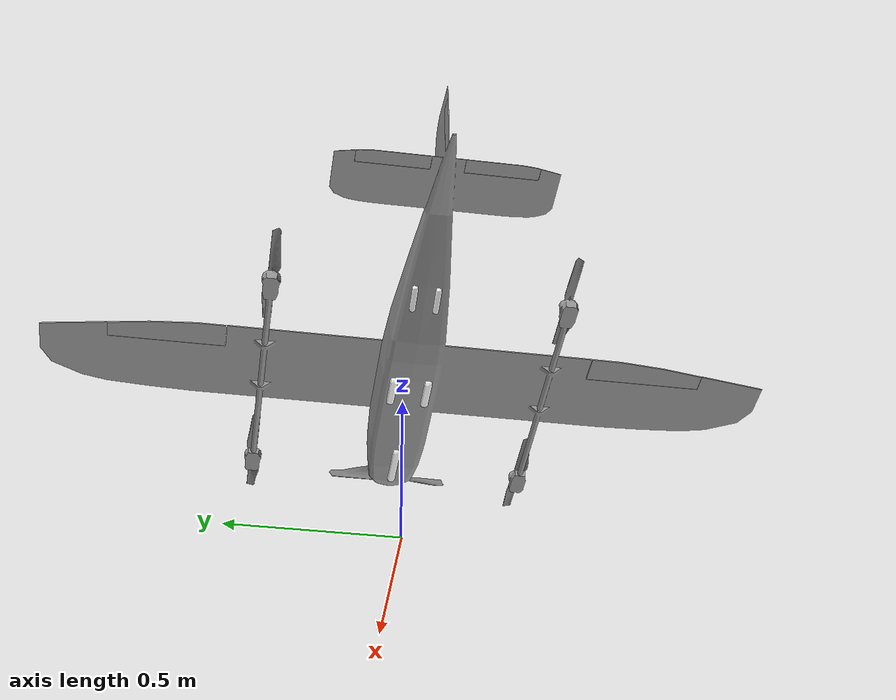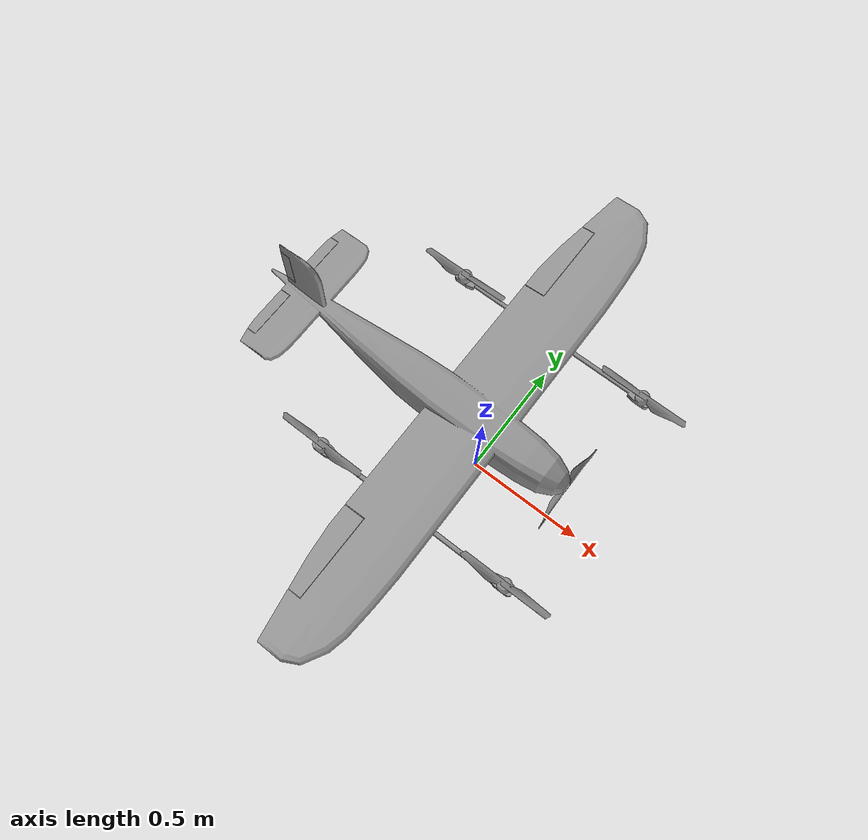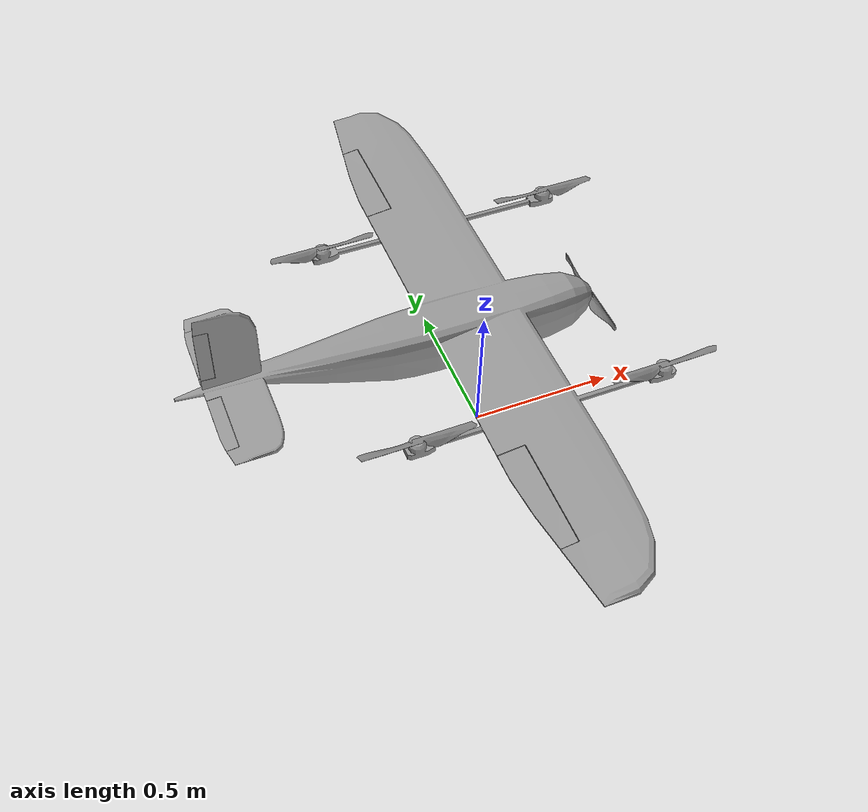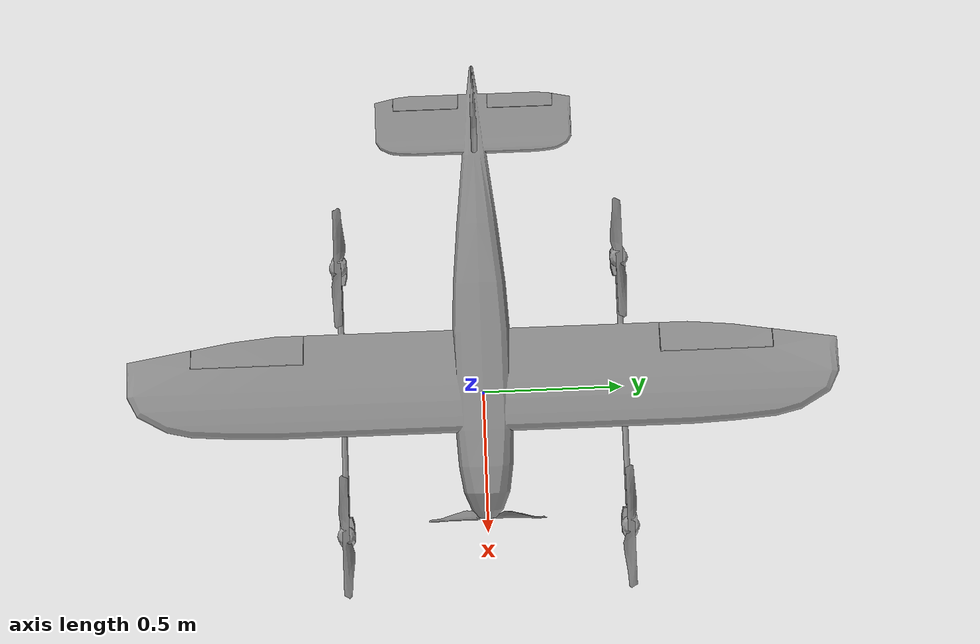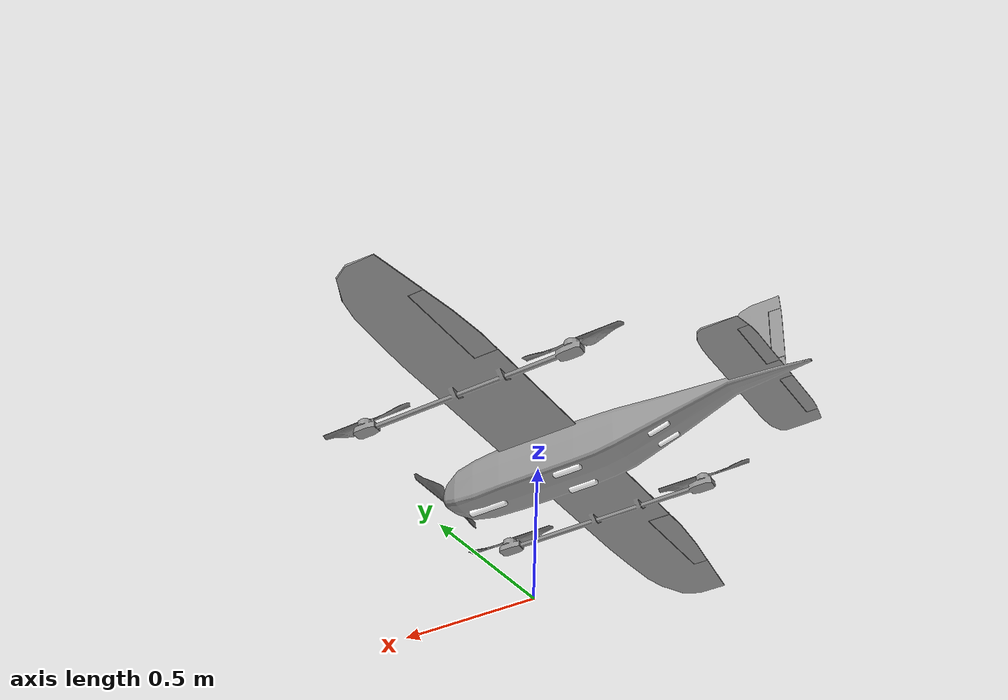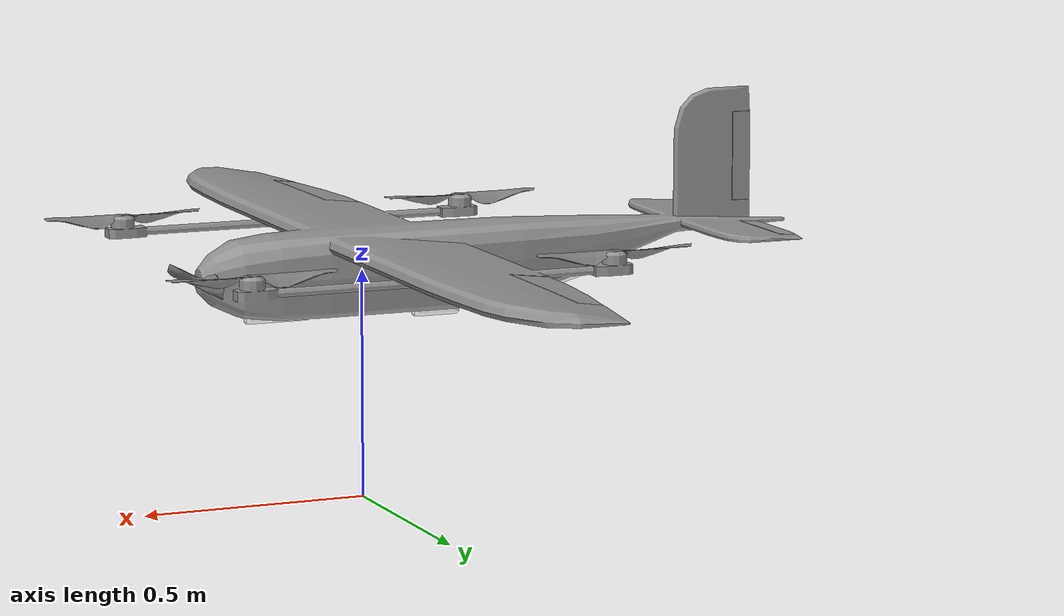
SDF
<?xml version="1.0"?>
<sdf version="1.10">
  <model name='foxtech_loong_2160'>
    <pose>0 0 0.5 0 0 0</pose>
    <link name="base_link">
      <visual name="visual_base_link">
        <geometry>
          <mesh>
            <uri>model://foxtech_loong_2160/meshes/VTOL.dae</uri>
          </mesh>
        </geometry>
      </visual>
      <collision name='base_link_collision'>
        <pose>0 0 -0.07 0 0 0</pose>
        <geometry>
          <box>
            <size>0.55 2.144 0.05</size>
          </box>
        </geometry>
        <surface>
          <contact>
            <ode>
              <kp>100000</kp>
              <kd>1.0</kd>
              <max_vel>0.1</max_vel>
              <min_depth>0.001</min_depth>
            </ode>
          </contact>
          <friction>
            <ode/>
          </friction>
        </surface>
      </collision>
      <inertial>
        <pose>-0.13220955077769075 -4.9142356489896525e-08 0.04102678265168308 1.5707963267948966 -1.5231416433972742 0</pose>
        <mass>3.584838964525901</mass>
        <inertia>
          <ixx>0.67738485351961117</ixx>
          <ixy>0</ixy>
          <ixz>0</ixz>
          <iyy>0.40350427325261343</iyy>
          <iyz>0</iyz>
          <izz>0.28925142846350795</izz>
        </inertia>
      </inertial>
      <sensor name="imu_sensor" type="imu">
        <always_on>1</always_on>
        <update_rate>250</update_rate>
      </sensor>
    </link>
    <link name="legs_link">
      <pose>0 0 0 0 0 -1.57</pose>
      <visual name="visual_legs_link">
        <geometry>
          <mesh>
            <uri>model://foxtech_loong_2160/meshes/legs.dae</uri>
          </mesh>
        </geometry>
        <material>
          <ambient>1 1 1 1.0</ambient>
          <diffuse>1 1 1 1.0</diffuse>
        </material>
      </visual>
      <inertial>
        <pose>3.7153930608820144e-06 -0.17032952180315669 -0.067888027893133446 0.010363008330798451 -1.494594844601834 1.5602561510969915</pose>
        <mass>0.6675493726413797</mass>
        <inertia>
          <ixx>0.032153703643267112</ixx>
          <ixy>0</ixy>
          <ixz>0</ixz>
          <iyy>0.031670484418576728</iyy>
          <iyz>0</iyz>
          <izz>0.00069030434527976208</izz>
        </inertia>
      </inertial>
    </link>
    <joint name='legs_joint' type='fixed'>
      <child>legs_link</child>
      <parent>base_link</parent>
    </joint>
    <link name="aileron_left_link">
      <pose>-0.122 0.713 0.062 0 0 -1.57</pose>
      <visual name="visual_aileron_left_link">
        <geometry>
          <mesh>
            <uri>model://foxtech_loong_2160/meshes/aileron_left.dae</uri>
          </mesh>
        </geometry>
      </visual>
      <inertial>
        <pose>0.016428520956860652 -0.026006344294799606 -0.0023574007803185606 -1.5395303459623877 -1.5044452951949348 -1.6400967799666224</pose>
        <mass>0.48889497715279695</mass>
        <inertia>
          <ixx>0.0046714785213929121</ixx>
          <ixy>0</ixy>
          <ixz>0</ixz>
          <iyy>0.0044549919806967505</iyy>
          <iyz>0</iyz>
          <izz>0.00022471747503113157</izz>
        </inertia>
      </inertial>
    </link>
    <joint name="servo_0" type="revolute">
      <parent>base_link</parent>
      <child>aileron_left_link</child>
      <axis>
        <xyz>-1 0 0</xyz>
        <limit>
          <lower>-0.53</lower>
          <upper>0.53</upper>
        </limit>
        <dynamics>
          <damping>1.000</damping>
        </dynamics>
      </axis>
    </joint>
    <link name="aileron_right_link">
      <pose>-0.122 -0.713 0.062 0 0 -1.57</pose>
      <visual name="visual_aileron_right_link">
        <geometry>
          <mesh>
            <uri>model://foxtech_loong_2160/meshes/aileron_right.dae</uri>
          </mesh>
        </geometry>
      </visual>
      <inertial>
        <pose>-0.016428520373255796 -0.026006344259039589 -0.0023573984798765397 -1.6020624043352432 -1.5044453783967096 -1.5014957739781367</pose>
        <mass>0.48889496879062661</mass>
        <inertia>
          <ixx>0.0046714784977765411</ixx>
          <ixy>0</ixy>
          <ixz>0</ixz>
          <iyy>0.0044549919610427299</iyy>
          <iyz>0</iyz>
          <izz>0.00022471747055809963</izz>
        </inertia>
      </inertial>
    </link>
    <joint name="servo_1" type="revolute">
      <parent>base_link</parent>
      <child>aileron_right_link</child>
      <axis>
        <xyz>-1 0 0</xyz>
        <limit>
          <lower>-0.53</lower>
          <upper>0.53</upper>
        </limit>
        <dynamics>
          <damping>1.000</damping>
        </dynamics>
      </axis>
    </joint>
    <link name="elevator_link">
      <visual name="visual_elevator_right_link">
        <pose>-0.883 -0.145 0.058 0 0 -1.57</pose>
        <geometry>
          <mesh>
            <uri>model://foxtech_loong_2160/meshes/elevator_right.dae</uri>
          </mesh>
        </geometry>
      </visual>
      <visual name="visual_elevator_left_link">
        <pose>-0.883 0.145 0.058 0 0 -1.57</pose>
        <geometry>
          <mesh>
            <uri>model://foxtech_loong_2160/meshes/elevator_left.dae</uri>
          </mesh>
        </geometry>
      </visual>
      <inertial>
        <pose>-0.90103043712540809 -1.4356019912623529e-05 0.057304774890379953 -1.5708004219891478 -1.5333831628670098 -3.141493135229823</pose>
        <mass>0.12150608610187363</mass>
        <inertia>
          <ixx>0.0029053735939891879</ixx>
          <ixy>0</ixy>
          <ixz>0</ixz>
          <iyy>0.0028879706692375028</iyy>
          <iyz>0</iyz>
          <izz>1.7683703559870421e-05</izz>
        </inertia>
      </inertial>
    </link>
    <joint name="servo_2" type="revolute">
      <pose>-0.883 0 0.058 0 0 -1.57</pose>
      <parent>base_link</parent>
      <child>elevator_link</child>
      <axis>
        <xyz>-1 0 0</xyz>
        <limit>
          <lower>-0.53</lower>
          <upper>0.53</upper>
        </limit>
        <dynamics>
          <damping>1.000</damping>
        </dynamics>
      </axis>
    </joint>
    <link name="rudder_link">
      <pose>-0.887 0 0.201 0 0 -1.57</pose>
      <visual name="visual_rudder_link">
        <geometry>
          <mesh>
            <uri>model://foxtech_loong_2160/meshes/rudder.dae</uri>
          </mesh>
        </geometry>
      </visual>
      <inertial>p
        <pose>3.0720176589210631e-09 -0.014597633583934367 -0.00023793299837082617 -0.00096325055376496349 0 0</pose>
        <mass>0.08686124232617691</mass>
        <inertia>
          <ixx>0.00029239473616759126</ixx>
          <ixy>0</ixy>
          <ixz>0</ixz>
          <iyy>0.00028035840542611708</iyy>
          <iyz>0</iyz>
          <izz>1.2453403617197103e-05</izz>
        </inertia>
      </inertial>
    </link>
    <joint name="servo_3" type="revolute">
      <parent>base_link</parent>
      <child>rudder_link</child>
      <axis>
        <xyz>0 0 1</xyz>
        <limit>
          <lower>-0.53</lower>
          <upper>0.53</upper>
        </limit>
        <dynamics>
          <damping>1.000</damping>
        </dynamics>
      </axis>
    </joint>
    <link name="rotor_3">
      <gravity>true</gravity>
      <self_collide>false</self_collide>
      <velocity_decay/>
      <pose>-0.403 -0.427 0.083 0 0 -1.57</pose>
      <inertial>
          <mass>0.016076923076923075</mass>
          <inertia>
            <ixx>3.8464910483993325e-07</ixx>
            <iyy>2.6115851691700804e-05</iyy>
            <izz>2.649858234714004e-05</izz>
          </inertia>
        </inertial>
      <visual name="rotor_3_visual">
        <geometry>
          <mesh>
            <uri>model://foxtech_loong_2160/meshes/propeller_ccw.dae</uri>
          </mesh>
        </geometry>
      </visual>
      <collision name="rotor_3_collision">
        <geometry>
          <box>
            <size>0.2792307692307692 0.016923076923076923 0.0008461538461538462</size>
          </box>
        </geometry>
        <surface>
          <contact>
            <ode>
              <min_depth>0.001</min_depth>
              <max_vel>0</max_vel>
            </ode>
          </contact>
          <friction>
            <ode/>
          </friction>
        </surface>
      </collision>
    </link>
    <joint name="rotor_0_joint" type="revolute">
      <parent>base_link</parent>
      <child>rotor_0</child>
      <axis>
        <xyz>0 0 1</xyz>
        <limit>
          <lower>-1e+16</lower>
          <upper>1e+16</upper>
        </limit>
        <dynamics>
          <spring_reference>0</spring_reference>
          <spring_stiffness>0</spring_stiffness>
        </dynamics>
      </axis>
    </joint>
    <link name="rotor_2">
      <gravity>true</gravity>
      <self_collide>false</self_collide>
      <velocity_decay/>
      <pose>0.403 0.427 0.083 0 0 -1.57</pose>
      <inertial>
          <mass>0.016076923076923075</mass>
          <inertia>
            <ixx>3.8464910483993325e-07</ixx>
            <iyy>2.6115851691700804e-05</iyy>
            <izz>2.649858234714004e-05</izz>
          </inertia>
        </inertial>
      <visual name="rotor_2_visual">
        <geometry>
          <mesh>
            <uri>model://foxtech_loong_2160/meshes/propeller_ccw.dae</uri>
          </mesh>
        </geometry>
      </visual>
      <collision name="rotor_2_collision">
        <geometry>
          <box>
            <size>0.2792307692307692 0.016923076923076923 0.0008461538461538462</size>
          </box>
        </geometry>
        <surface>
          <contact>
            <ode>
              <min_depth>0.001</min_depth>
              <max_vel>0</max_vel>
            </ode>
          </contact>
          <friction>
            <ode/>
          </friction>
        </surface>
      </collision>
    </link>
    <joint name="rotor_1_joint" type="revolute">
      <parent>base_link</parent>
      <child>rotor_1</child>
      <axis>
        <xyz>0 0 1</xyz>
        <limit>
          <lower>-1e+16</lower>
          <upper>1e+16</upper>
        </limit>
        <dynamics>
          <spring_reference>0</spring_reference>
          <spring_stiffness>0</spring_stiffness>
        </dynamics>
      </axis>
    </joint>
    <link name="rotor_0">
      <gravity>true</gravity>
      <self_collide>false</self_collide>
      <velocity_decay/>
      <pose>0.403 -0.427 0.083 0 0 -1.57</pose>
      <inertial>
          <mass>0.016076923076923075</mass>
          <inertia>
            <ixx>3.8464910483993325e-07</ixx>
            <iyy>2.6115851691700804e-05</iyy>
            <izz>2.649858234714004e-05</izz>
          </inertia>
        </inertial>
      <visual name="rotor_0_visual">
        <geometry>
          <mesh>
            <uri>model://foxtech_loong_2160/meshes/propeller_cw.dae</uri>
          </mesh>
        </geometry>
      </visual>
      <collision name="rotor_0_collision">
        <geometry>
          <box>
            <size>0.2792307692307692 0.016923076923076923 0.0008461538461538462</size>
          </box>
        </geometry>
        <surface>
          <contact>
            <ode>
              <min_depth>0.001</min_depth>
              <max_vel>0</max_vel>
            </ode>
          </contact>
          <friction>
            <ode/>
          </friction>
        </surface>
      </collision>
    </link>
    <joint name="rotor_2_joint" type="revolute">
      <parent>base_link</parent>
      <child>rotor_2</child>
      <axis>
        <xyz>0 0 1</xyz>
        <limit>
          <lower>-1e+16</lower>
          <upper>1e+16</upper>
        </limit>
        <dynamics>
          <spring_reference>0</spring_reference>
          <spring_stiffness>0</spring_stiffness>
        </dynamics>
      </axis>
    </joint>
    <link name="rotor_1">
      <gravity>true</gravity>
      <self_collide>false</self_collide>
      <velocity_decay/>
      <pose>-0.403 0.427 0.083 0 0 -1.57</pose>
      <inertial>
          <mass>0.016076923076923075</mass>
          <inertia>
            <ixx>3.8464910483993325e-07</ixx>
            <iyy>2.6115851691700804e-05</iyy>
            <izz>2.649858234714004e-05</izz>
          </inertia>
        </inertial>
      <visual name="rotor_1_visual">
        <geometry>
          <mesh>
            <uri>model://foxtech_loong_2160/meshes/propeller_cw.dae</uri>
          </mesh>
        </geometry>
      </visual>
      <collision name="rotor_1_collision">
        <geometry>
          <box>
            <size>0.2792307692307692 0.016923076923076923 0.0008461538461538462</size>
          </box>
        </geometry>
        <surface>
          <contact>
            <ode>
              <min_depth>0.001</min_depth>
              <max_vel>0</max_vel>
            </ode>
          </contact>
          <friction>
            <ode/>
          </friction>
        </surface>
      </collision>
    </link>
    <joint name="rotor_3_joint" type="revolute">
      <parent>base_link</parent>
      <child>rotor_3</child>
      <axis>
        <xyz>0 0 1</xyz>
        <limit>
          <lower>-1e+16</lower>
          <upper>1e+16</upper>
        </limit>
        <dynamics>
          <spring_reference>0</spring_reference>
          <spring_stiffness>0</spring_stiffness>
        </dynamics>
      </axis>
    </joint>
    <link name='rotor_puller'>
      <pose>0.379 0.0 0.0 -1.57 1.57 -1.57</pose>
      <inertial>
        <pose>0 0 0 0 0 0</pose>
        <mass>0.005</mass>
        <inertia>
          <ixx>9.75e-07</ixx>
          <ixy>0</ixy>
          <ixz>0</ixz>
          <iyy>0.000166704</iyy>
          <iyz>0</iyz>
          <izz>0.000167604</izz>
        </inertia>
      </inertial>
      <collision name='rotor_puller_collision'>
        <geometry>
          <cylinder>
            <length>0.005</length>
            <radius>0.06</radius>
          </cylinder>
        </geometry>
        <surface>
          <contact>
            <ode/>
          </contact>
          <friction>
            <ode/>
          </friction>
        </surface>
      </collision>
      <visual name='rotor_puller_visual'>
        <geometry>
          <mesh>
            <uri>model://foxtech_loong_2160/meshes/propeller_cw.dae</uri>
          </mesh>
        </geometry>
      </visual>
      <gravity>1</gravity>
      <velocity_decay/>
      <self_collide>0</self_collide>
    </link>
    <joint name='rotor_puller_joint' type='revolute'>
      <pose>0.0 0 0.0 0 -1.57 0</pose>
      <child>rotor_puller</child>
      <parent>base_link</parent>
      <axis>
        <xyz>1 0 0</xyz>
        <limit>
          <lower>-1e+16</lower>
          <upper>1e+16</upper>
        </limit>
        <dynamics>
          <spring_reference>0</spring_reference>
          <spring_stiffness>0</spring_stiffness>
        </dynamics>
      </axis>
    </joint>

    <plugin filename="gz-sim-multicopter-motor-model-system" name="gz::sim::systems::MulticopterMotorModel">
      <jointName>rotor_0_joint</jointName>
      <linkName>rotor_0</linkName>
      <turningDirection>ccw</turningDirection>
      <timeConstantUp>0.0125</timeConstantUp>
      <timeConstantDown>0.025</timeConstantDown>
      <maxRotVelocity>1500</maxRotVelocity>
      <motorConstant>2e-05</motorConstant>
      <momentConstant>0.06</momentConstant>
      <commandSubTopic>command/motor_speed</commandSubTopic>
      <motorNumber>0</motorNumber>
      <rotorDragCoefficient>0.000106428</rotorDragCoefficient>
      <rollingMomentCoefficient>1e-06</rollingMomentCoefficient>
      <rotorVelocitySlowdownSim>20</rotorVelocitySlowdownSim>
      <motorType>velocity</motorType>
    </plugin>
    <plugin filename="gz-sim-multicopter-motor-model-system" name="gz::sim::systems::MulticopterMotorModel">
      <jointName>rotor_1_joint</jointName>
      <linkName>rotor_1</linkName>
      <turningDirection>ccw</turningDirection>
      <timeConstantUp>0.0125</timeConstantUp>
      <timeConstantDown>0.025</timeConstantDown>
      <maxRotVelocity>1500</maxRotVelocity>
      <motorConstant>2e-05</motorConstant>
      <momentConstant>0.06</momentConstant>
      <commandSubTopic>command/motor_speed</commandSubTopic>
      <motorNumber>1</motorNumber>
      <rotorDragCoefficient>0.000106428</rotorDragCoefficient>
      <rollingMomentCoefficient>1e-06</rollingMomentCoefficient>
      <rotorVelocitySlowdownSim>20</rotorVelocitySlowdownSim>
      <motorType>velocity</motorType>
    </plugin>
    <plugin
      filename="gz-sim-multicopter-motor-model-system"
      name="gz::sim::systems::MulticopterMotorModel">
      <jointName>rotor_2_joint</jointName>
      <linkName>rotor_2</linkName>
      <turningDirection>cw</turningDirection>
      <timeConstantUp>0.0125</timeConstantUp>
      <timeConstantDown>0.025</timeConstantDown>
      <maxRotVelocity>1500</maxRotVelocity>
      <motorConstant>2e-05</motorConstant>
      <momentConstant>0.06</momentConstant>
      <commandSubTopic>command/motor_speed</commandSubTopic>
      <motorNumber>2</motorNumber>
      <rotorDragCoefficient>0.000106428</rotorDragCoefficient>
      <rollingMomentCoefficient>1e-06</rollingMomentCoefficient>
      <rotorVelocitySlowdownSim>20</rotorVelocitySlowdownSim>
      <motorType>velocity</motorType>
    </plugin>
    <plugin
      filename="gz-sim-multicopter-motor-model-system"
      name="gz::sim::systems::MulticopterMotorModel">
      <jointName>rotor_3_joint</jointName>
      <linkName>rotor_3</linkName>
      <turningDirection>cw</turningDirection>
      <timeConstantUp>0.0125</timeConstantUp>
      <timeConstantDown>0.025</timeConstantDown>
      <maxRotVelocity>1500</maxRotVelocity>
      <motorConstant>2e-05</motorConstant>
      <momentConstant>0.06</momentConstant>
      <commandSubTopic>command/motor_speed</commandSubTopic>
      <motorNumber>3</motorNumber>
      <rotorDragCoefficient>0.000106428</rotorDragCoefficient>
      <rollingMomentCoefficient>1e-06</rollingMomentCoefficient>
      <rotorVelocitySlowdownSim>20</rotorVelocitySlowdownSim>
      <motorType>velocity</motorType>
    </plugin>
    <plugin
      filename="gz-sim-multicopter-motor-model-system"
      name="gz::sim::systems::MulticopterMotorModel">
      <jointName>rotor_puller_joint</jointName>
      <linkName>rotor_puller</linkName>
      <turningDirection>cw</turningDirection>
      <timeConstantUp>0.0125</timeConstantUp>
      <timeConstantDown>0.025</timeConstantDown>
      <maxRotVelocity>3500</maxRotVelocity>
      <motorConstant>8.54858e-06</motorConstant>
      <momentConstant>0.01</momentConstant>
      <commandSubTopic>command/motor_speed</commandSubTopic>
      <motorNumber>4</motorNumber>
      <rotorDragCoefficient>0.000106428</rotorDragCoefficient>
      <rollingMomentCoefficient>1e-06</rollingMomentCoefficient>
      <rotorVelocitySlowdownSim>20</rotorVelocitySlowdownSim>
      <motorType>velocity</motorType>
    </plugin>
    <plugin filename="gz-sim-lift-drag-system" name="gz::sim::systems::LiftDrag">
      <a0>0.05984281113</a0>
      <cla>4.752798721</cla>
      <cda>0.6417112299</cda>
      <cma>0.0</cma>
      <alpha_stall>0.3391428111</alpha_stall>
      <cla_stall>-3.85</cla_stall>
      <cda_stall>-0.9233984055</cda_stall>
      <cma_stall>0</cma_stall>
      <cp>-0.05 0.45 0.05</cp>
      <area>0.6</area>
      <air_density>1.2041</air_density>
      <forward>1 0 0</forward>
      <upward>0 0 1</upward>
      <link_name>base_link</link_name>
      <control_joint_name>servo_0</control_joint_name>
      <control_joint_rad_to_cl>-0.3</control_joint_rad_to_cl>
    </plugin>
    <plugin
      filename="gz-sim-joint-position-controller-system" name="gz::sim::systems::JointPositionController">
      <joint_name>servo_0</joint_name>
      <sub_topic>servo_0</sub_topic>
      <p_gain>10.0</p_gain>
    </plugin>
    <plugin filename="gz-sim-lift-drag-system" name="gz::sim::systems::LiftDrag">
      <a0>0.05984281113</a0>
      <cla>4.752798721</cla>
      <cda>0.6417112299</cda>
      <cma>0.0</cma>
      <alpha_stall>0.3391428111</alpha_stall>
      <cla_stall>-3.85</cla_stall>
      <cda_stall>-0.9233984055</cda_stall>
      <cma_stall>0</cma_stall>
      <cp>-0.05 -0.45 0.05</cp>
      <area>0.6</area>
      <air_density>1.2041</air_density>
      <forward>1 0 0</forward>
      <upward>0 0 1</upward>
      <link_name>base_link</link_name>
      <control_joint_name>servo_1</control_joint_name>
      <control_joint_rad_to_cl>-0.3</control_joint_rad_to_cl>
    </plugin>
    <plugin
      filename="gz-sim-joint-position-controller-system" name="gz::sim::systems::JointPositionController">
      <joint_name>servo_1</joint_name>
      <sub_topic>servo_1</sub_topic>
      <p_gain>10.0</p_gain>
    </plugin>
    <plugin filename="gz-sim-lift-drag-system" name="gz::sim::systems::LiftDrag">
      <a0>-0.2</a0>
      <cla>4.752798721</cla>
      <cda>0.6417112299</cda>
      <cma>0.0</cma>
      <alpha_stall>0.3391428111</alpha_stall>
      <cla_stall>-3.85</cla_stall>
      <cda_stall>-0.9233984055</cda_stall>
      <cma_stall>0</cma_stall>
      <cp>-0.5 0 0</cp>
      <area>0.01</area>
      <air_density>1.2041</air_density>
      <forward>1 0 0</forward>
      <upward>0 0 1</upward>
      <link_name>base_link</link_name>
      <control_joint_name>servo_2</control_joint_name>
      <control_joint_rad_to_cl>-4.0</control_joint_rad_to_cl>
    </plugin>
    <plugin
      filename="gz-sim-joint-position-controller-system" name="gz::sim::systems::JointPositionController">
      <joint_name>servo_2</joint_name>
      <sub_topic>servo_2</sub_topic>
      <p_gain>10.0</p_gain>
    </plugin>
    <plugin filename="gz-sim-lift-drag-system" name="gz::sim::systems::LiftDrag">
      <a0>0.0</a0>
      <cla>4.752798721</cla>
      <cda>0.6417112299</cda>
      <cma>0.0.</cma>
      <alpha_stall>0.3391428111</alpha_stall>
      <cla_stall>-3.85</cla_stall>
      <cda_stall>-0.9233984055</cda_stall>
      <cma_stall>0</cma_stall>
      <cp>-0.5 0 0.05</cp>
      <area>0.02</area>
      <air_density>1.2041</air_density>
      <forward>1 0 0</forward>
      <upward>0 1 0</upward>
      <link_name>base_link</link_name>
      <control_joint_name>servo_3</control_joint_name>
      <control_joint_rad_to_cl>0.8</control_joint_rad_to_cl>
    </plugin>
    <plugin
      filename="gz-sim-joint-position-controller-system" name="gz::sim::systems::JointPositionController">
      <joint_name>servo_3</joint_name>
      <sub_topic>servo_3</sub_topic>
      <p_gain>10.0</p_gain>
    </plugin>
  </model>
</sdf>
